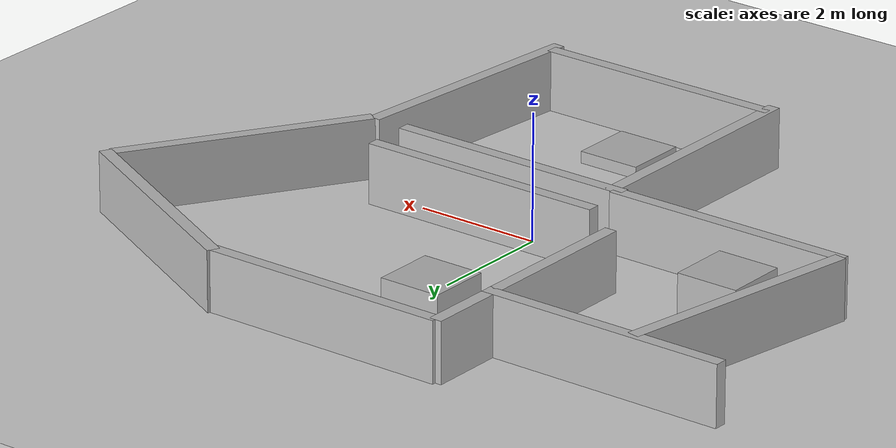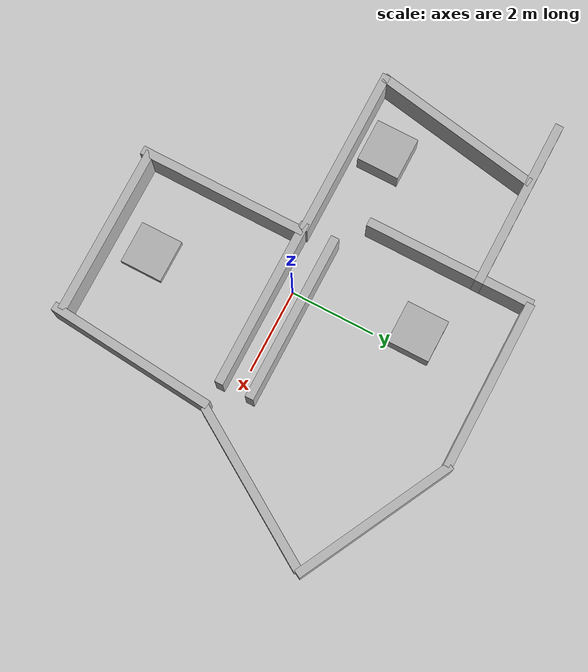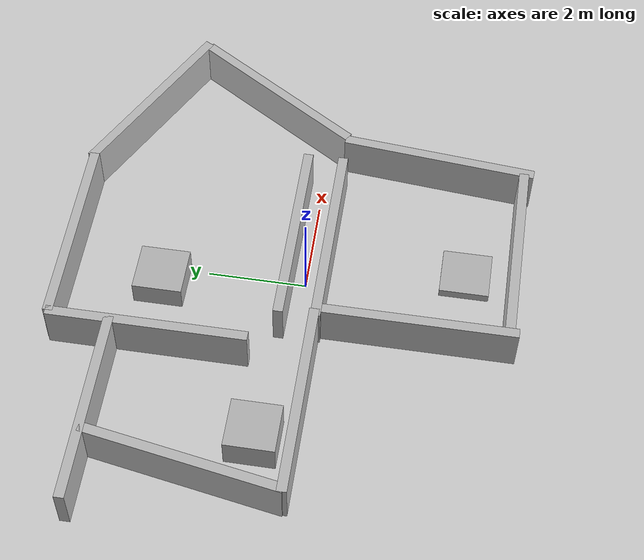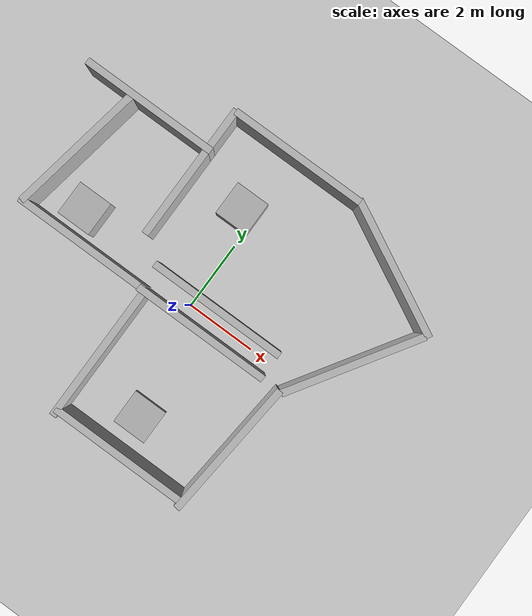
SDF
<sdf version="1.9">
 <world name="demo">
  <plugin name="ignition::gazebo::systems::Physics" filename="ignition-gazebo-physics-system"/>
  <plugin name="ignition::gazebo::systems::Sensors" filename="ignition-gazebo-sensors-system">
   <render_engine>ogre2</render_engine>
  </plugin>
  <plugin name="ignition::gazebo::systems::SceneBroadcaster" filename="ignition-gazebo-scene-broadcaster-system"/>
  <plugin name="ignition::gazebo::systems::UserCommands" filename="ignition-gazebo-user-commands-system"/>
  <gravity>0 0 -9.8</gravity>
  <magnetic_field>6e-06 2.3e-05 -4.2e-05</magnetic_field>
  <atmosphere type="adiabatic"/>
  <physics type="ode">
   <max_step_size>0.001</max_step_size>
   <real_time_factor>1</real_time_factor>
   <real_time_update_rate>1000</real_time_update_rate>
  </physics>
  <scene><ambient>0.4 0.4 0.4 1</ambient><background>0.7 0.7 0.7 1</background><shadows>true</shadows></scene>
  <model name="ground_plane">
   <static>true</static>
   <link name="link">
    <collision name="collision">
     <geometry><plane><normal>0 0 1</normal><size>100 100</size></plane></geometry>
    </collision>
    <visual name="visual">
     <geometry><plane><normal>0 0 1</normal><size>100 100</size></plane></geometry>
     <material>
      <ambient>0.8 0.8 0.8 1</ambient>
      <diffuse>0.8 0.8 0.8 1</diffuse>
      <specular>0.8 0.8 0.8 1</specular>
     </material>
    </visual>
    <inertial>
     <mass>1</mass>
     <inertia><ixx>1</ixx><ixy>0</ixy><ixz>0</ixz><iyy>1</iyy><iyz>0</iyz><izz>1</izz></inertia>
    </inertial>
   </link>
  </model>
  <model name="wall1">
   <pose>3.70986 3.90791 0.5 0 -0 1.09392</pose>
   <static>true</static>
   <link name="link">
    <collision name="collision"><geometry><box><size>0.2 4 1</size></box></geometry></collision>
    <visual name="visual"><geometry><box><size>0.2 4 1</size></box></geometry></visual>
    <inertial>
     <mass>1</mass>
     <inertia><ixx>1</ixx><ixy>0</ixy><ixz>0</ixz><iyy>1</iyy><iyz>0</iyz><izz>1</izz></inertia>
    </inertial>
   </link>
  </model>
  <model name="wall2">
   <pose>-2 2.82595 0.5 0 -0 0</pose>
   <static>true</static>
   <link name="link">
    <collision name="collision"><geometry><box><size>0.2 4 1</size></box></geometry></collision>
    <visual name="visual"><geometry><box><size>0.2 4 1</size></box></geometry></visual>
    <inertial>
     <mass>1</mass>
     <inertia><ixx>1</ixx><ixy>0</ixy><ixz>0</ixz><iyy>1</iyy><iyz>0</iyz><izz>1</izz></inertia>
    </inertial>
   </link>
  </model>
  <model name="wall3">
   <pose>0.002213 4.77859 0.5 0 -0 1.57</pose>
   <static>true</static>
   <link name="link">
    <collision name="collision"><geometry><box><size>0.2 4 1</size></box></geometry></collision>
    <visual name="visual"><geometry><box><size>0.2 4 1</size></box></geometry></visual>
    <inertial>
     <mass>1</mass>
     <inertia><ixx>1</ixx><ixy>0</ixy><ixz>0</ixz><iyy>1</iyy><iyz>0</iyz><izz>1</izz></inertia>
    </inertial>
   </link>
  </model>
  <model name="wall4">
   <pose>3.01336 -2.35781 0.5 0 0 -0.092053</pose>
   <static>true</static>
   <link name="link">
    <collision name="collision"><geometry><box><size>0.2 4 1</size></box></geometry></collision>
    <visual name="visual"><geometry><box><size>0.2 4 1</size></box></geometry></visual>
    <inertial>
     <mass>1</mass>
     <inertia><ixx>1</ixx><ixy>0</ixy><ixz>0</ixz><iyy>1</iyy><iyz>0</iyz><izz>1</izz></inertia>
    </inertial>
   </link>
  </model>
  <model name="wall1_1">
   <pose>4.32616 1.27867 0.5 0 -0 2.57628</pose>
   <static>true</static>
   <link name="link">
    <collision name="collision"><geometry><box><size>0.2 4 1</size></box></geometry></collision>
    <visual name="visual"><geometry><box><size>0.2 4 1</size></box></geometry></visual>
    <inertial>
     <mass>1</mass>
     <inertia><ixx>1</ixx><ixy>0</ixy><ixz>0</ixz><iyy>1</iyy><iyz>0</iyz><izz>1</izz></inertia>
    </inertial>
   </link>
  </model>
  <model name="wall3_1">
   <pose>0.820038 -4.14857 0.5 0 -0 1.57</pose>
   <static>true</static>
   <link name="link">
    <collision name="collision"><geometry><box><size>0.2 4 1</size></box></geometry></collision>
    <visual name="visual"><geometry><box><size>0.2 4 1</size></box></geometry></visual>
    <inertial>
     <mass>1</mass>
     <inertia><ixx>1</ixx><ixy>0</ixy><ixz>0</ixz><iyy>1</iyy><iyz>0</iyz><izz>1</izz></inertia>
    </inertial>
   </link>
  </model>
  <model name="wall2_1">
   <pose>-1.13496 -2.32971 0.5 0 -0 0</pose>
   <static>true</static>
   <link name="link">
    <collision name="collision"><geometry><box><size>0.2 4 1</size></box></geometry></collision>
    <visual name="visual"><geometry><box><size>0.2 4 1</size></box></geometry></visual>
    <inertial>
     <mass>1</mass>
     <inertia><ixx>1</ixx><ixy>0</ixy><ixz>0</ixz><iyy>1</iyy><iyz>0</iyz><izz>1</izz></inertia>
    </inertial>
   </link>
  </model>
  <model name="wall3_2">
   <pose>-3.17062 -0.347201 0.5 0 -0 1.57</pose>
   <static>true</static>
   <link name="link">
    <collision name="collision"><geometry><box><size>0.2 4 1</size></box></geometry></collision>
    <visual name="visual"><geometry><box><size>0.2 4 1</size></box></geometry></visual>
    <inertial>
     <mass>1</mass>
     <inertia><ixx>1</ixx><ixy>0</ixy><ixz>0</ixz><iyy>1</iyy><iyz>0</iyz><izz>1</izz></inertia>
    </inertial>
   </link>
  </model>
  <model name="wall3_2_1">
   <pose>-4.75698 1.59833 0.5 0 -0 2.97101</pose>
   <static>true</static>
   <link name="link">
    <collision name="collision"><geometry><box><size>0.2 4 1</size></box></geometry></collision>
    <visual name="visual"><geometry><box><size>0.2 4 1</size></box></geometry></visual>
    <inertial>
     <mass>1</mass>
     <inertia><ixx>1</ixx><ixy>0</ixy><ixz>0</ixz><iyy>1</iyy><iyz>0</iyz><izz>1</izz></inertia>
    </inertial>
   </link>
  </model>
  <model name="wall3_2_2">
   <pose>-3.89954 3.56599 0.5 0 -0 1.57</pose>
   <static>true</static>
   <link name="link">
    <collision name="collision"><geometry><box><size>0.2 4 1</size></box></geometry></collision>
    <visual name="visual"><geometry><box><size>0.2 4 1</size></box></geometry></visual>
    <inertial>
     <mass>1</mass>
     <inertia><ixx>1</ixx><ixy>0</ixy><ixz>0</ixz><iyy>1</iyy><iyz>0</iyz><izz>1</izz></inertia>
    </inertial>
   </link>
  </model>
  <model name="wall3_2_3">
   <pose>0.671128 -0.382098 0.5 0 -0 1.57</pose>
   <static>true</static>
   <link name="link">
    <collision name="collision"><geometry><box><size>0.2 4 1</size></box></geometry></collision>
    <visual name="visual"><geometry><box><size>0.2 4 1</size></box></geometry></visual>
    <inertial>
     <mass>1</mass>
     <inertia><ixx>1</ixx><ixy>0</ixy><ixz>0</ixz><iyy>1</iyy><iyz>0</iyz><izz>1</izz></inertia>
    </inertial>
   </link>
  </model>
  <model name="wall3_2_4">
   <pose>0.655522 0.348841 0.5 0 -0 1.57</pose>
   <static>true</static>
   <link name="link">
    <collision name="collision"><geometry><box><size>0.2 4 1</size></box></geometry></collision>
    <visual name="visual"><geometry><box><size>0.2 4 1</size></box></geometry></visual>
    <inertial>
     <mass>1</mass>
     <inertia><ixx>1</ixx><ixy>0</ixy><ixz>0</ixz><iyy>1</iyy><iyz>0</iyz><izz>1</izz></inertia>
    </inertial>
   </link>
  </model>
  <model name="box">
   <pose>-0.407145 2.88238 0.070842 0 0 0</pose>
   <link name="box_link">
    <inertial>
     <inertia><ixx>0.16666</ixx><ixy>0</ixy><ixz>0</ixz><iyy>0.16666</iyy><iyz>0</iyz><izz>0.16666</izz></inertia>
     <mass>1</mass>
    </inertial>
    <collision name="box_collision"><geometry><box><size>1 1 1</size></box></geometry></collision>
    <visual name="box_visual">
     <geometry><box><size>1 1 1</size></box></geometry>
     <material>
      <ambient>0.3 0.3 0.3 1</ambient>
      <diffuse>0.7 0.7 0.7 1</diffuse>
      <specular>1 1 1 1</specular>
     </material>
    </visual>
   </link>
   <static>false</static>
  </model>
  <model name="box_1">
   <pose>0.667315 -3.19863 -0.263448 0 0 0</pose>
   <link name="box_link">
    <inertial>
     <inertia><ixx>0.16666</ixx><ixy>0</ixy><ixz>0</ixz><iyy>0.16666</iyy><iyz>0</iyz><izz>0.16666</izz></inertia>
     <mass>1</mass>
    </inertial>
    <collision name="box_collision"><geometry><box><size>1 1 1</size></box></geometry></collision>
    <visual name="box_visual">
     <geometry><box><size>1 1 1</size></box></geometry>
     <material>
      <ambient>0.3 0.3 0.3 1</ambient>
      <diffuse>0.7 0.7 0.7 1</diffuse>
      <specular>1 1 1 1</specular>
     </material>
    </visual>
   </link>
   <static>false</static>
  </model>
  <model name="ground_plane_1">
   <static>true</static>
   <link name="link">
    <collision name="collision">
     <geometry><plane><normal>0 0 1</normal><size>100 100</size></plane></geometry>
    </collision>
    <visual name="visual">
     <geometry><plane><normal>0 0 1</normal><size>100 100</size></plane></geometry>
     <material>
      <ambient>0.8 0.8 0.8 1</ambient>
      <diffuse>0.8 0.8 0.8 1</diffuse>
      <specular>0.8 0.8 0.8 1</specular>
     </material>
    </visual>
    <inertial>
     <mass>1</mass>
     <inertia><ixx>1</ixx><ixy>0</ixy><ixz>0</ixz><iyy>1</iyy><iyz>0</iyz><izz>1</izz></inertia>
    </inertial>
   </link>
   <pose>-0.419583 3.53432 0 0 -0 0</pose>
  </model>
  <model name="box_1_1">
   <pose>-3.73902 0.426208 0.1991 0 0 0</pose>
   <link name="box_link">
    <inertial>
     <inertia><ixx>0.16666</ixx><ixy>0</ixy><ixz>0</ixz><iyy>0.16666</iyy><iyz>0</iyz><izz>0.16666</izz></inertia>
     <mass>1</mass>
    </inertial>
    <collision name="box_collision"><geometry><box><size>1 1 1</size></box></geometry></collision>
    <visual name="box_visual">
     <geometry><box><size>1 1 1</size></box></geometry>
     <material>
      <ambient>0.3 0.3 0.3 1</ambient>
      <diffuse>0.7 0.7 0.7 1</diffuse>
      <specular>1 1 1 1</specular>
     </material>
    </visual>
   </link>
   <static>false</static>
  </model>
  <light name="sun" type="directional">
   <pose>0 0 10 0 -0 0</pose>
   <intensity>1</intensity>
   <direction>-0.5 0.1 -0.9</direction>
   <diffuse>0.8 0.8 0.8 1</diffuse>
   <specular>0.2 0.2 0.2 1</specular>
   <attenuation>
    <range>1000</range>
    <linear>0.01</linear>
    <constant>0.90000000000000002</constant>
    <quadratic>0.001</quadratic>
   </attenuation>
   <spot><inner_angle>0</inner_angle><outer_angle>0</outer_angle><falloff>0</falloff></spot>
  </light>
 </world>
</sdf>
